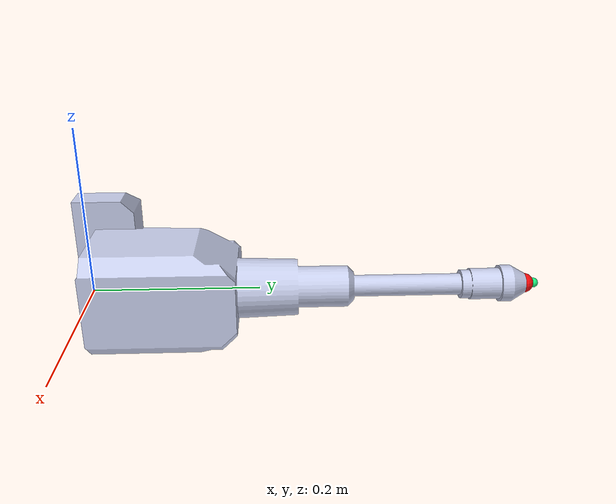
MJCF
<mujoco model="picking_station_tool">
  <compiler angle="radian" meshdir="assets"/>

  <default>
    <default class="visual">
      <geom type="mesh" contype="0" conaffinity="0" group="2"/>
    </default>
    <default class="collision">
      <geom group="3" rgba="0.79 0.82 0.93 1"/>
    </default>
  </default>

  <asset>
    <material name="gripper_body_mat" rgba="0.79216 0.81961 0.93333 1"/>
    <mesh name="gripper_body_mesh" file="550-00260REV02.STL"/>
  </asset>

  <worldbody>
    <body name="tool_tip_link">
      <site name="tool_tip_frame_site" type="sphere" size="0.008" rgba="0.98 0.58 0.12 1"/>
      <site name="cup_nominal_site" pos="0 0.5244 0" type="sphere" size="0.007" rgba="1 0.15 0.15 1"/>

      <body name="gripper_body_link">
        <joint
          name="cup_compliance_joint"
          type="slide"
          axis="0 -1 0"
          range="0 0.04"
          limited="true"
          stiffness="100"
          damping="1.8"
          armature="0.002"
        />
        <site name="gripper_body_frame_site" type="sphere" size="0.008" rgba="0.15 0.72 1 1"/>
        <site name="seal_tip_site" pos="0 0.5244 0" type="sphere" size="0.012" rgba="1 0.05 0.05 1"/>
        <site name="seal_axis_site" pos="0 0.5124 0" type="sphere" size="0.008" rgba="0.05 0.9 0.05 1"/>

        <geom name="gripper_body_visual" class="visual" mesh="gripper_body_mesh" material="gripper_body_mat"
          euler="-1.5707963267948966 0 -1.5707963267948966"/>

        <geom name="gripper_body_collision" class="collision" type="mesh" mesh="gripper_body_mesh"
          euler="-1.5707963267948966 0 -1.5707963267948966"/>

        <body name="cup_tip_link" pos="0 0.5244 0">
          <geom name="cup_lip_collision" class="collision" type="sphere" size="0.026" mass="0.025" rgba="1 0.78 0.1 0.45"/>
          <site name="cup_tip_site" type="sphere" size="0.008" rgba="1 0.85 0.15 1"/>

          <body name="teleop_pivot_link"/>
          <body name="gripper_tip_link"/>
        </body>

        <body name="cup_uncompressed_link" pos="0 0.5364 0">
          <site name="cup_uncompressed_site" type="sphere" size="0.006" rgba="0.1 0.95 0.5 1"/>
        </body>
      </body>
    </body>
  </worldbody>
</mujoco>
